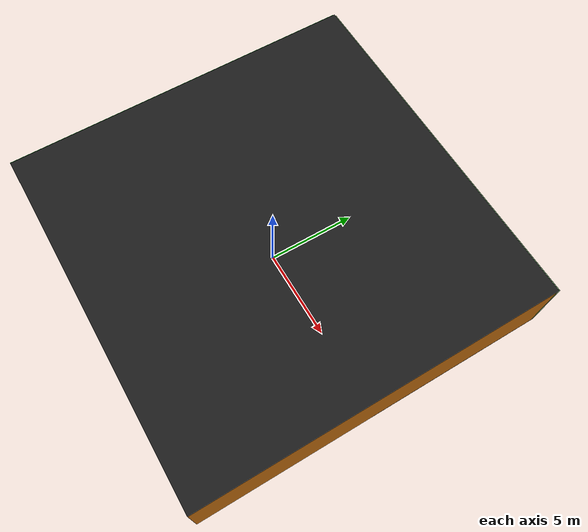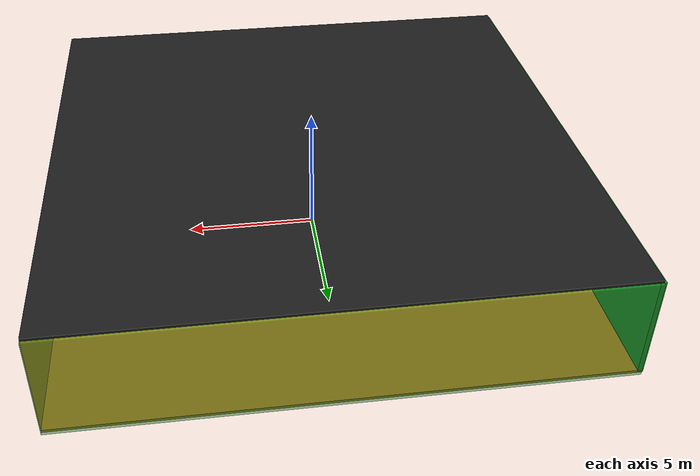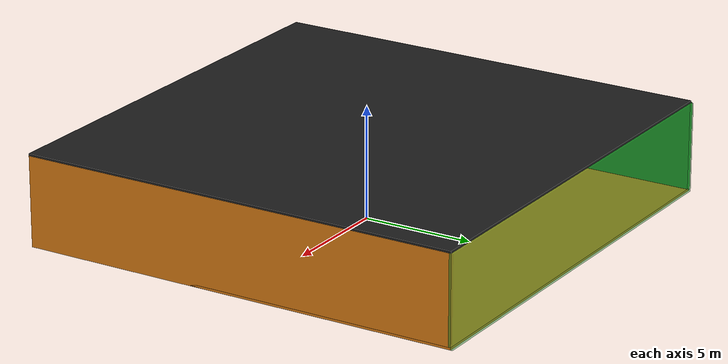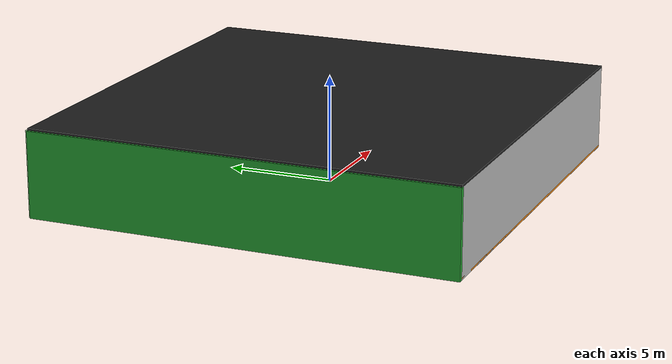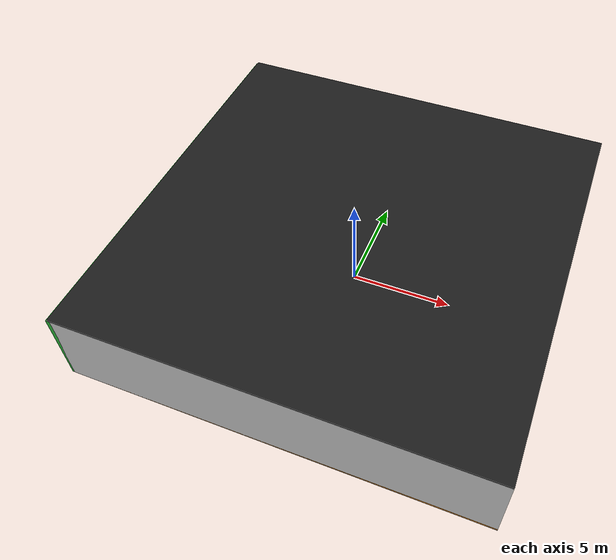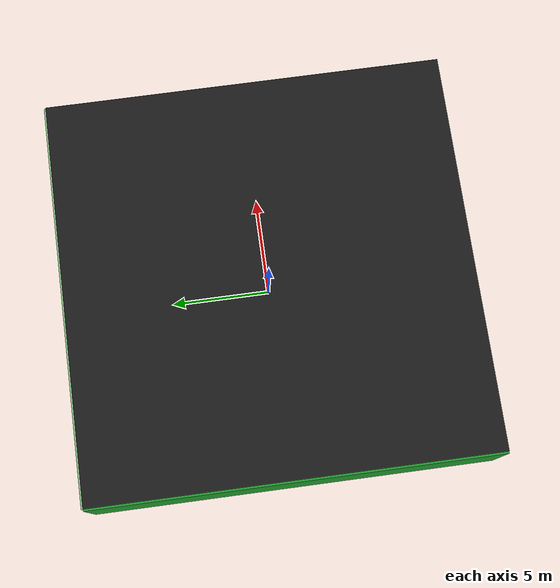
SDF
<sdf version="1.4">
 <world name="default">
  <physics type="ode">
   <max_step_size>0.001</max_step_size>
   <real_time_factor>1</real_time_factor>
   <real_time_update_rate>1000</real_time_update_rate>
   <gravity>0 0 -9.8</gravity>
  </physics>
  <scene><ambient>0.4 0.4 0.4 1</ambient><background>0.7 0.7 0.7 1</background><shadows>1</shadows></scene>
  <model name="Surrounding">
   <static>1</static>
   <link name="Ceiling">
    <collision name="Ceiling_Collision"><geometry><box><size>20 20 0.1</size></box></geometry></collision>
    <visual name="Ceiling_Visual">
     <geometry><box><size>20 20 0.1</size></box></geometry>
     <material>
      <script><uri>file://media/materials/scripts/gazebo.material</uri><name>Gazebo/FlatBlack</name></script>
     </material>
    </visual>
    <pose>0 0 4.05 0 0 0</pose>
   </link>
   <link name="Wall_South">
    <collision name="Wall_South_Collision">
     <geometry><box><size>20 0 4</size></box></geometry>
     <pose>0 0 2 0 -0 0</pose>
    </collision>
    <visual name="Wall_South_Visual">
     <pose>0 0 2 0 -0 0</pose>
     <geometry><box><size>20 0 4</size></box></geometry>
     <material>
      <script><uri>file://media/materials/scripts/gazebo.material</uri><name>Gazebo/PioneerBody</name></script>
     </material>
    </visual>
    <velocity_decay><linear>0</linear><angular>0</angular></velocity_decay>
    <pose>0 -10 0 0 -0 0</pose>
   </link>
   <link name="Wall_East">
    <collision name="Wall_21_Collision">
     <geometry><box><size>20 0 4</size></box></geometry>
     <pose>0 0 2 0 -0 0</pose>
    </collision>
    <visual name="Wall_21_Visual">
     <pose>0 0 2 0 -0 0</pose>
     <geometry><box><size>20 0 4</size></box></geometry>
     <material>
      <script><uri>file://media/materials/scripts/gazebo.material</uri><name>Gazebo/Orange</name></script>
     </material>
    </visual>
    <velocity_decay><linear>0</linear><angular>0</angular></velocity_decay>
    <pose>10 0 0 0 -0 1.5708</pose>
   </link>
   <link name="Wall_North">
    <collision name="Wall_22_Collision">
     <geometry><box><size>20 0.2 4</size></box></geometry>
     <pose>0 0 2 0 -0 0</pose>
    </collision>
    <visual name="Wall_22_Visual">
     <pose>0 0 2 0 -0 0</pose>
     <geometry><box><size>20 0.2 4</size></box></geometry>
     <material>
      <script><uri>file://media/materials/scripts/gazebo.material</uri><name>Gazebo/GreenTransparent</name></script>
     </material>
    </visual>
    <velocity_decay><linear>0</linear><angular>0</angular></velocity_decay>
    <pose>0 10 0 0 -0 0</pose>
   </link>
   <link name="Wall_West">
    <collision name="Wall_23_Collision">
     <geometry><box><size>20 0.2 4</size></box></geometry>
     <pose>0 0 2 0 -0 0</pose>
    </collision>
    <visual name="Wall_23_Visual">
     <pose>0 0 2 0 -0 0</pose>
     <geometry><box><size>20 0.2 4</size></box></geometry>
     <material>
      <script><uri>file://media/materials/scripts/gazebo.material</uri><name>Gazebo/GreenGlow</name></script>
     </material>
    </visual>
    <velocity_decay><linear>0</linear><angular>0</angular></velocity_decay>
    <pose>-10 0 0 0 0 -1.5708</pose>
   </link>
   <link name="Ground_link">
    <collision name="collision">
     <pose>0 0 .05 0 -0 0</pose>
     <geometry><box><size>20 20 0.1</size></box></geometry>
    </collision>
    <visual name="visual">
     <pose>0 0 .05 0 -0 0</pose>
     <geometry><box><size>20 20 0.1</size></box></geometry>
     <material>
      <script><uri>file://media/materials/scripts/gazebo.material</uri><name>Gazebo/Orange</name></script>
     </material>
    </visual>
   </link>
   <static>1</static>
  </model>
  <spherical_coordinates>
   <surface_model>EARTH_WGS84</surface_model>
   <latitude_deg>0</latitude_deg>
   <longitude_deg>0</longitude_deg>
   <elevation>0</elevation>
   <heading_deg>0</heading_deg>
  </spherical_coordinates>
  <light name="lightball_0" type="diffuse">
   <diffuse>0.8 0.8 0.8 1</diffuse>
   <specular>0.2 0.2 0.2 1</specular>
   <attenuation>
    <range>100</range>
    <constant>0.7</constant>
    <linear>0.01</linear>
    <quadratic>0.001</quadratic>
   </attenuation>
   <direction>-0.5 0.1 -0.9</direction>
   <pose>-6.20982825081 -7.99931188294 3.2287337689 0 0 0</pose>
  </light>
  <light name="lightball_1" type="diffuse">
   <diffuse>0.8 0.8 0.8 1</diffuse>
   <specular>0.2 0.2 0.2 1</specular>
   <attenuation>
    <range>100</range>
    <constant>0.7</constant>
    <linear>0.01</linear>
    <quadratic>0.001</quadratic>
   </attenuation>
   <direction>-0.5 0.1 -0.9</direction>
   <pose>-5.77556204779 -7.6636058148 1.64812163231 0 0 0</pose>
  </light>
  <light name="lightball_2" type="diffuse">
   <diffuse>0.8 0.8 0.8 1</diffuse>
   <specular>0.2 0.2 0.2 1</specular>
   <attenuation>
    <range>100</range>
    <constant>0.7</constant>
    <linear>0.01</linear>
    <quadratic>0.001</quadratic>
   </attenuation>
   <direction>-0.5 0.1 -0.9</direction>
   <pose>3.16964355714 6.46848139925 3.52385860001 0 0 0</pose>
  </light>
  <light name="lightball_3" type="diffuse">
   <diffuse>0.8 0.8 0.8 1</diffuse>
   <specular>0.2 0.2 0.2 1</specular>
   <attenuation>
    <range>100</range>
    <constant>0.7</constant>
    <linear>0.01</linear>
    <quadratic>0.001</quadratic>
   </attenuation>
   <direction>-0.5 0.1 -0.9</direction>
   <pose>-8.59482975045 -1.04446380933 1.74144590117 0 0 0</pose>
  </light>
  <light name="lightball_4" type="diffuse">
   <diffuse>0.8 0.8 0.8 1</diffuse>
   <specular>0.2 0.2 0.2 1</specular>
   <attenuation>
    <range>100</range>
    <constant>0.7</constant>
    <linear>0.01</linear>
    <quadratic>0.001</quadratic>
   </attenuation>
   <direction>-0.5 0.1 -0.9</direction>
   <pose>7.72626273562 -5.11411470852 3.73159719874 0 0 0</pose>
  </light>
  <light name="lightball_5" type="diffuse">
   <diffuse>0.8 0.8 0.8 1</diffuse>
   <specular>0.2 0.2 0.2 1</specular>
   <attenuation>
    <range>100</range>
    <constant>0.7</constant>
    <linear>0.01</linear>
    <quadratic>0.001</quadratic>
   </attenuation>
   <direction>-0.5 0.1 -0.9</direction>
   <pose>1.79529040329 -0.5623104991 2.62677721603 0 0 0</pose>
  </light>
  <light name="lightball_6" type="diffuse">
   <diffuse>0.8 0.8 0.8 1</diffuse>
   <specular>0.2 0.2 0.2 1</specular>
   <attenuation>
    <range>100</range>
    <constant>0.7</constant>
    <linear>0.01</linear>
    <quadratic>0.001</quadratic>
   </attenuation>
   <direction>-0.5 0.1 -0.9</direction>
   <pose>-0.875519046198 -8.9179148697 1.54219199285 0 0 0</pose>
  </light>
  <light name="lightball_7" type="diffuse">
   <diffuse>0.8 0.8 0.8 1</diffuse>
   <specular>0.2 0.2 0.2 1</specular>
   <attenuation>
    <range>100</range>
    <constant>0.7</constant>
    <linear>0.01</linear>
    <quadratic>0.001</quadratic>
   </attenuation>
   <direction>-0.5 0.1 -0.9</direction>
   <pose>-9.74297752881 5.04265590603 3.8937592808 0 0 0</pose>
  </light>
  <light name="lightball_8" type="diffuse">
   <diffuse>0.8 0.8 0.8 1</diffuse>
   <specular>0.2 0.2 0.2 1</specular>
   <attenuation>
    <range>100</range>
    <constant>0.7</constant>
    <linear>0.01</linear>
    <quadratic>0.001</quadratic>
   </attenuation>
   <direction>-0.5 0.1 -0.9</direction>
   <pose>-8.55488179585 9.13062614025 0.857993718211 0 0 0</pose>
  </light>
  <light name="lightball_9" type="diffuse">
   <diffuse>0.8 0.8 0.8 1</diffuse>
   <specular>0.2 0.2 0.2 1</specular>
   <attenuation>
    <range>100</range>
    <constant>0.7</constant>
    <linear>0.01</linear>
    <quadratic>0.001</quadratic>
   </attenuation>
   <direction>-0.5 0.1 -0.9</direction>
   <pose>-6.85165433449 4.32639488999 1.92934403228 0 0 0</pose>
  </light>
  <include><uri>model://table</uri><pose>-1.82965815976 -7.85708241222 0 0 0 0.534238267679</pose></include>
 </world>
</sdf>

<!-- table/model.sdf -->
<sdf version="1.5">
  <model name="table">
    <static>true</static>
    <link name="link">
      <collision name="surface">
        <pose>0 0 1.0 0 0 0</pose>
        <geometry>
          <box>
            <size>1.5 0.8 0.03</size>
          </box>
        </geometry>
        <surface>
          <friction>
            <ode>
              <mu>0.6</mu>
              <mu2>0.6</mu2>
            </ode>
          </friction>
        </surface>
      </collision>
      <visual name="visual1">
        <pose>0 0 1.0 0 0 0</pose>
        <geometry>
          <box>
            <size>1.5 0.8 0.03</size>
          </box>
        </geometry>
        <material>
          <script>
            <uri>model://media/materials/scripts/gazebo.material</uri>
            <name>Gazebo/Wood</name>
          </script>
        </material>
      </visual>
      <collision name="front_left_leg">
        <pose>0.68 0.38 0.5 0 0 0</pose>
        <geometry>
          <cylinder>
            <radius>0.02</radius>
            <length>1.0</length>
          </cylinder>
        </geometry>
      </collision>
      <visual name="front_left_leg">
        <pose>0.68 0.38 0.5 0 0 0</pose>
        <geometry>
          <cylinder>
            <radius>0.02</radius>
            <length>1.0</length>
          </cylinder>
        </geometry>
        <material>
          <script>
            <uri>model://media/materials/scripts/gazebo.material</uri>
            <name>Gazebo/Grey</name>
          </script>
        </material>
      </visual>
      <collision name="front_right_leg">
        <pose>0.68 -0.38 0.5 0 0 0</pose>
        <geometry>
          <cylinder>
            <radius>0.02</radius>
            <length>1.0</length>
          </cylinder>
        </geometry>
      </collision>
      <visual name="front_right_leg">
        <pose>0.68 -0.38 0.5 0 0 0</pose>
        <geometry>
          <cylinder>
            <radius>0.02</radius>
            <length>1.0</length>
          </cylinder>
        </geometry>
        <material>
          <script>
            <uri>model://media/materials/scripts/gazebo.material</uri>
            <name>Gazebo/Grey</name>
          </script>
        </material>
      </visual>
      <collision name="back_right_leg">
        <pose>-0.68 -0.38 0.5 0 0 0</pose>
        <geometry>
          <cylinder>
            <radius>0.02</radius>
            <length>1.0</length>
          </cylinder>
        </geometry>
      </collision>
      <visual name="back_right_leg">
        <pose>-0.68 -0.38 0.5 0 0 0</pose>
        <geometry>
          <cylinder>
            <radius>0.02</radius>
            <length>1.0</length>
          </cylinder>
        </geometry>
        <material>
          <script>
            <uri>model://media/materials/scripts/gazebo.material</uri>
            <name>Gazebo/Grey</name>
          </script>
        </material>
      </visual>
      <collision name="back_left_leg">
        <pose>-0.68 0.38 0.5 0 0 0</pose>
        <geometry>
          <cylinder>
            <radius>0.02</radius>
            <length>1.0</length>
          </cylinder>
        </geometry>
      </collision>
      <visual name="back_left_leg">
        <pose>-0.68 0.38 0.5 0 0 0</pose>
        <geometry>
          <cylinder>
            <radius>0.02</radius>
            <length>1.0</length>
          </cylinder>
        </geometry>
        <material>
          <script>
            <uri>model://media/materials/scripts/gazebo.material</uri>
            <name>Gazebo/Grey</name>
          </script>
        </material>
      </visual>
    </link>
  </model>
</sdf>
